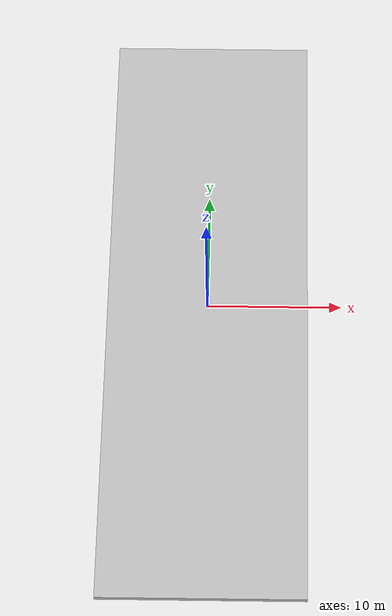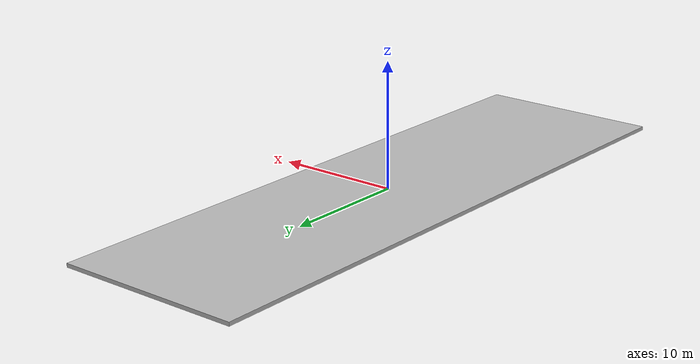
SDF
<?xml version="1.0" ?>
<sdf version="1.5">
  <model name="lane_50">
    <static>true</static>
    <link name="link">
      <collision name="collision">
        <geometry>
          <box>
            <size>15 50 .3</size>
          </box>
        </geometry>
      </collision>
      <visual name="visual">
        <cast_shadows>false</cast_shadows>
        <geometry>
          <box>
            <size>15 50 .3</size>
          </box>
        </geometry>
        <material>
          <script>
            <uri>model://lane_50/materials/scripts</uri>
            <uri>model://lane_50/materials/textures</uri>
            <name>vrc/lane</name>
          </script>
        </material>
      </visual>
    </link>
  </model>
</sdf>
